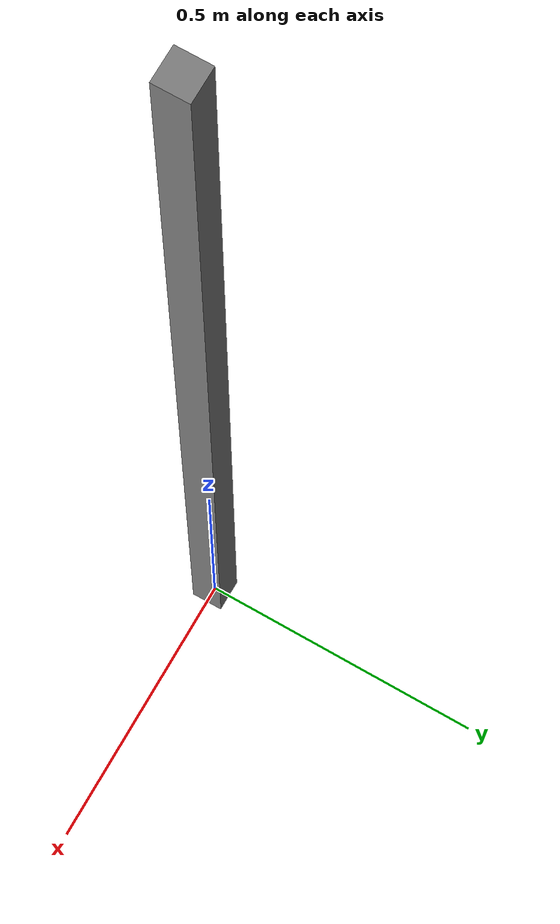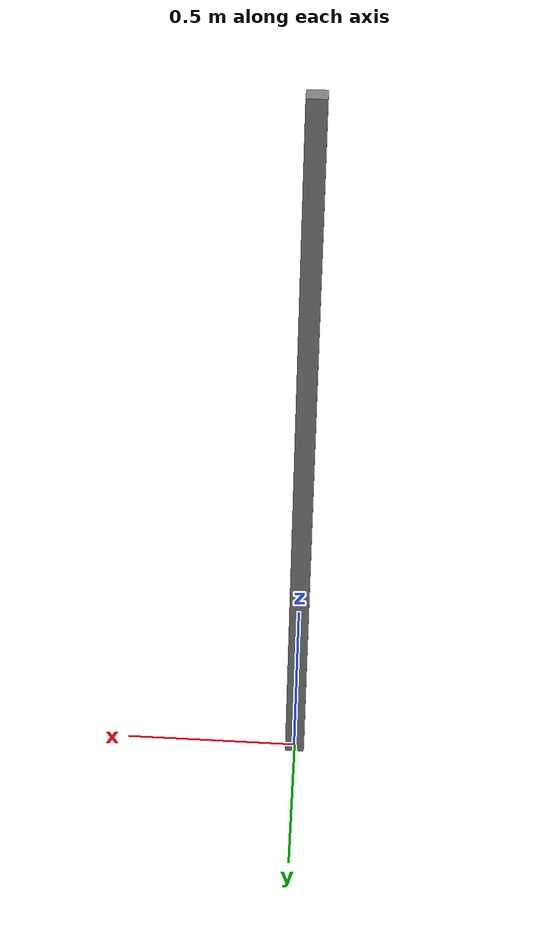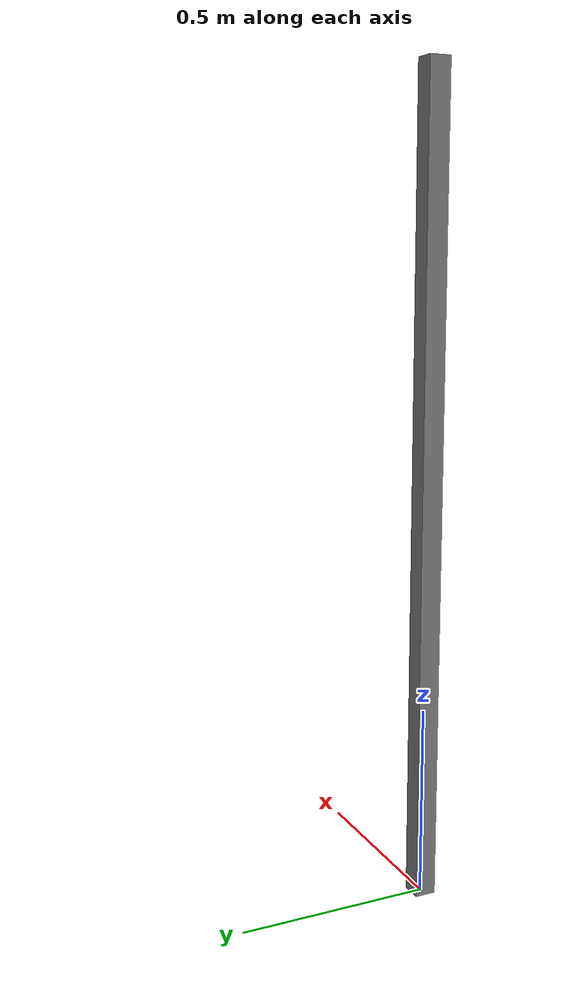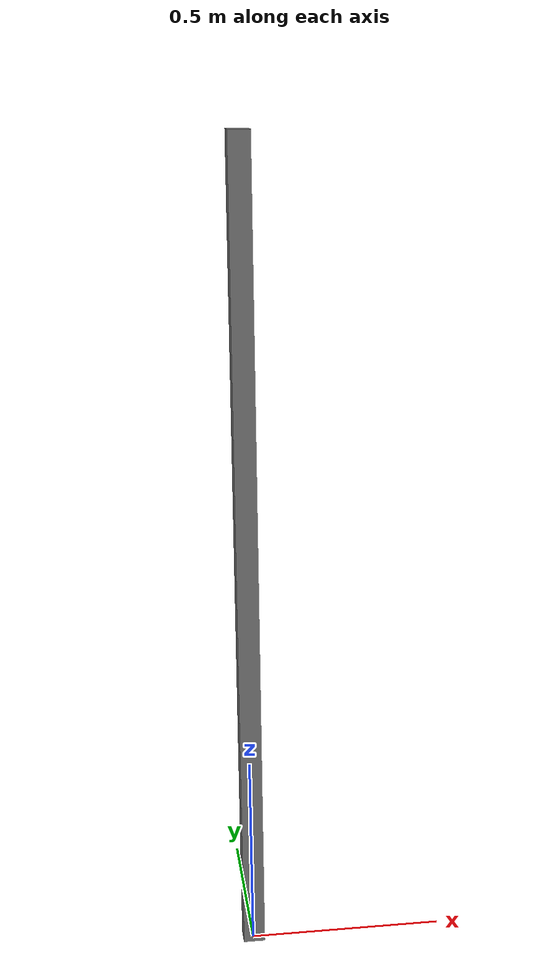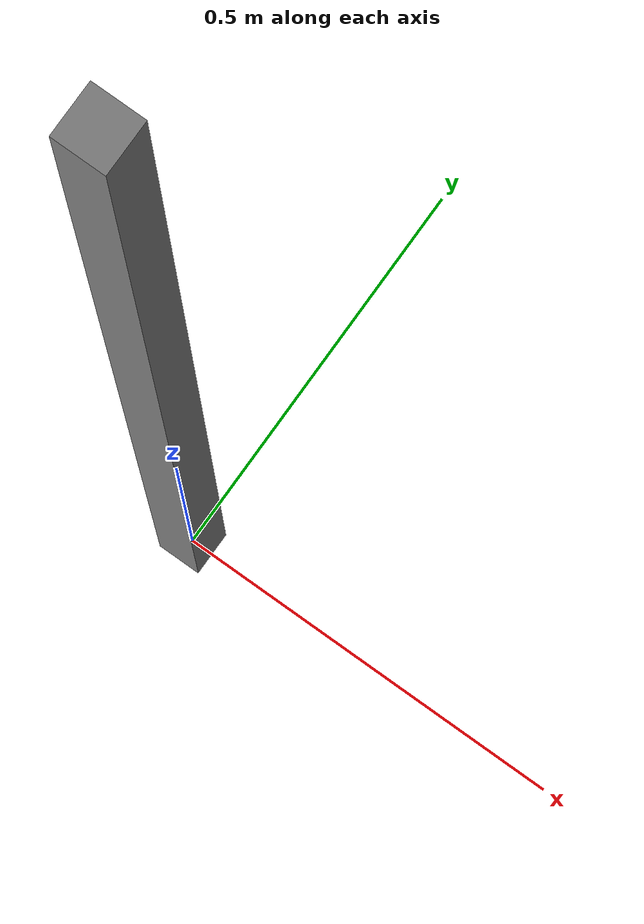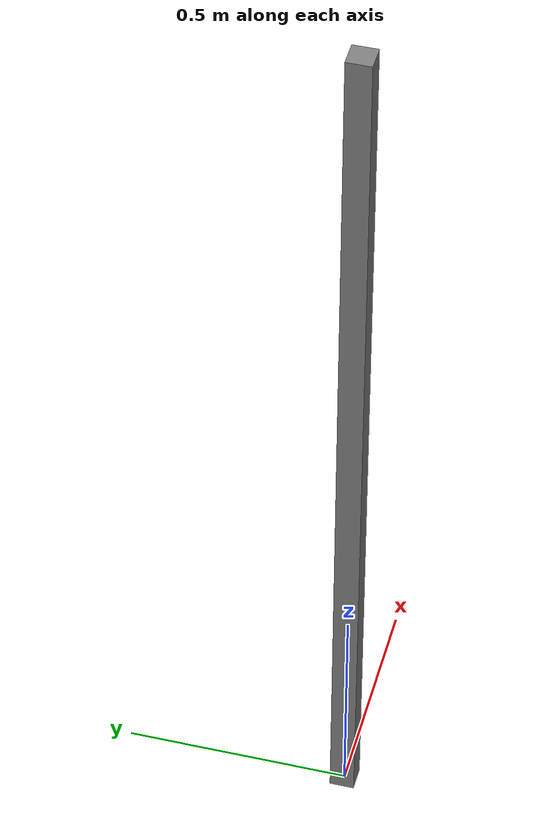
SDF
<?xml version="1.0" ?>
<sdf version="1.4">
    <model name='wall_frame_55_55_2090'>
      <link name='link'>
        <inertial>
          <mass>50</mass>
          <inertia>
            <ixx>1</ixx>
            <ixy>0</ixy>
            <ixz>0</ixz>
            <iyy>1</iyy>
            <iyz>0</iyz>
            <izz>1</izz>
          </inertia>
        </inertial>
        <visual name='_frame'>
          <pose>0 0 1.045 0 0 0</pose>
          <geometry>
            <box>
              <size>0.055 0.055 2.090</size>
            </box>
          </geometry>
          <material>
            <!-- hsr_color/white -->
            <name>white</name>
            <ambient>1 1 1 1</ambient>
            <diffuse>0.5 0.5 0.5 1</diffuse>
            <specular>0 0 0 1</specular>
            <emissive>0 0 0 1</emissive>
            <shading>gouraud</shading>
            <receive_shadows>on</receive_shadows>
          </material>
        </visual>
        <collision name='collision_frame'>
          <pose>0 0 1.045 0 0 0</pose>
          <geometry>
            <box>
              <size>0.055 0.055 2.090</size>
            </box>
          </geometry>
          <max_contacts>10</max_contacts>
          <surface>
            <bounce/>
            <friction>
              <ode/>
            </friction>
            <contact>
              <ode/>
            </contact>
          </surface>
        </collision>
        <velocity_decay>
          <linear>0</linear>
          <angular>0</angular>
        </velocity_decay>
        <self_collide>0</self_collide>
        <kinematic>0</kinematic>
        <gravity>1</gravity>
      </link>
      <static>1</static>
    </model>
</sdf>
